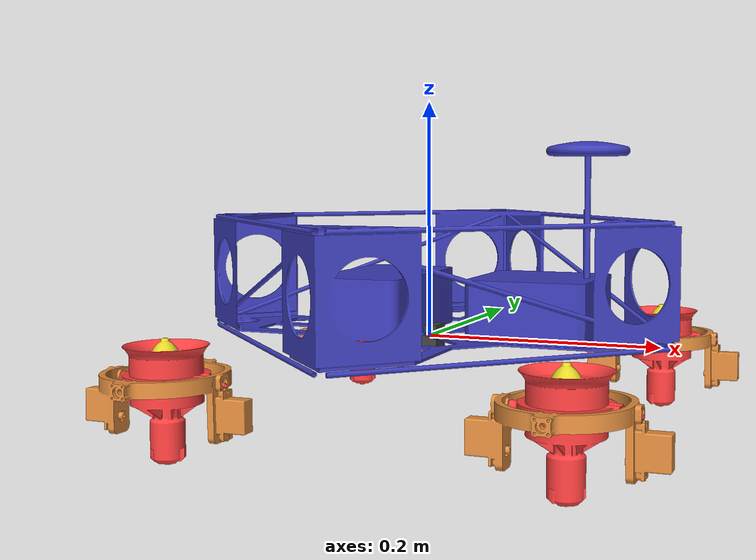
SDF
<sdf version='1.10'>
  <model name='tvmd'>
    <link name='base_link'>
      <inertial>
        <pose>0 0 0 0 0 0</pose>
        <mass>1.4</mass>
        <inertia>
          <ixx>0.02</ixx>
          <ixy>0.0002778506938765993</ixy>
          <ixz>-0.00050801012549722409</ixz>
          <iyy>0.02</iyy>
          <iyz>-0.0002130772702844956</iyz>
          <izz>0.02</izz>
        </inertia>
      </inertial>
      <collision name='base_link_collision'>
        <pose>0 0 0.050000000000000003 0 0 0.78539816339744839</pose>
        <geometry>
          <box>
            <size>0.29999999999999999 0.29999999999999999 0.10000000000000001</size>
          </box>
        </geometry>
        <surface>
          <contact>
            <ode/>
          </contact>
          <friction>
            <ode/>
          </friction>
        </surface>
      </collision>
      <collision name='base_link_fixed_joint_lump__imu_sensor_link_collision_1'>
        <pose>0 0 0 0 0 0</pose>
        <geometry>
          <box>
            <size>0.02 0.02 0.02</size>
          </box>
        </geometry>
        <surface>
          <contact>
            <ode/>
          </contact>
          <friction>
            <ode/>
          </friction>
        </surface>
      </collision>
      <visual name='base_link_visual'>
        <pose>0 0 0 0 0 0</pose>
        <geometry>
          <mesh>
            <scale>0.001 0.001 0.001</scale>
            <uri>model://tvmd/meshes/navigator/NavigatorModule-Sim.stl</uri>
          </mesh>
        </geometry>
        <material>
          <diffuse>0.25 0.25 0.75000006 1</diffuse>
          <ambient>0.25 0.25 0.75000006 1</ambient>
        </material>
      </visual>
      <visual name='base_link_fixed_joint_lump__imu_sensor_link_visual_1'>
        <pose>0 0 0 0 0 0</pose>
        <geometry>
          <box>
            <size>0.02 0.02 0.02</size>
          </box>
        </geometry>
        <material>
          <diffuse>0.25 0.25 0.25 1</diffuse>
          <ambient>0.25 0.25 0.25 1</ambient>
        </material>
      </visual>
      <sensor name='air_pressure_sensor' type='air_pressure'>
        <always_on>true</always_on>
        <update_rate>50</update_rate>
        <air_pressure>
          <pressure>
            <noise type='gaussian'>
              <mean>0</mean>
              <stddev>0.01</stddev>
            </noise>
          </pressure>
        </air_pressure>
      </sensor>
      <sensor name='imu_sensor' type='imu'>
        <always_on>true</always_on>
        <update_rate>250</update_rate>
        <visualize>true</visualize>
        <pose>0 0 0 0 0 0</pose>
      </sensor>
      <gravity>true</gravity>
      <gravity>true</gravity>
      <gravity>true</gravity>
      <self_collide>false</self_collide>
      <gravity>true</gravity>
    </link>
    <!-- Module 1 (Front-Left): Physics at (0.16, 0.175), Visual at (0.1675, 0.1825) -->
    <!-- Visual offset: (0.0075, 0.0075, 0) -->
    <joint name='module1_body_gimbal_joint' type='revolute'>
      <pose relative_to='base_link'>0.16 0.175 -0.02 0 0 0</pose>
      <parent>base_link</parent>
      <child>module1_gimbal_link</child>
      <axis>
        <xyz>0 1 0</xyz>
        <limit>
          <lower>-0.78539816339744828</lower>
          <upper>0.78539816339744828</upper>
          <effort>30000</effort>
          <velocity>10</velocity>
        </limit>
        <dynamics>
          <damping>0</damping>
          <friction>0</friction>
          <spring_reference>0</spring_reference>
          <spring_stiffness>0</spring_stiffness>
        </dynamics>
      </axis>
    </joint>
    <link name='module1_gimbal_link'>
      <pose relative_to='module1_body_gimbal_joint'>0 0 0 0 0 0</pose>
      <inertial>
        <pose>0 0 0 0 0 0</pose>
        <mass>0.033955279999999997</mass>
        <inertia>
          <ixx>0.00034947999999999999</ixx>
          <ixy>0</ixy>
          <ixz>0</ixz>
          <iyy>1.64e-06</iyy>
          <iyz>-2e-08</iyz>
          <izz>0.00034949999999999998</izz>
        </inertia>
      </inertial>
      <collision name='module1_gimbal_link_fixed_joint_lump__module1_actuator_collision_collision'>
        <pose>0.001 -0.018 0.065 0 0 0</pose>
        <geometry>
          <cylinder>
            <length>0.40000000000000002</length>
            <radius>0.01</radius>
          </cylinder>
        </geometry>
      </collision>
      <visual name='module1_gimbal_link_visual'>
        <pose>0.0065 -0.0125 0.065 0 0 0</pose>
        <geometry>
          <mesh>
            <scale>0.001 0.001 0.001</scale>
            <uri>model://tvmd/meshes/agent/Gimbal_Frame_1.stl</uri>
          </mesh>
        </geometry>
        <material>
          <script>
            <name>Gazebo/Gray</name>
            <uri>file://media/materials/scripts/gazebo.material</uri>
          </script>
          <diffuse>0.900000036 0.5625 0.25 1</diffuse>
          <ambient>0.900000036 0.5625 0.25 1</ambient>
        </material>
      </visual>
      <self_collide>false</self_collide>
      <gravity>true</gravity>
    </link>
    <joint name='module1_gimbal_actuator_joint' type='revolute'>
      <pose relative_to='module1_gimbal_link'>0 0 0 0 0 0</pose>
      <parent>module1_gimbal_link</parent>
      <child>module1_actuator_link</child>
      <axis>
        <xyz>1 0 0</xyz>
        <limit>
          <lower>-0.78539816339744828</lower>
          <upper>0.78539816339744828</upper>
          <effort>30000</effort>
          <velocity>10</velocity>
        </limit>
        <dynamics>
          <damping>0</damping>
          <friction>0</friction>
          <spring_reference>0</spring_reference>
          <spring_stiffness>0</spring_stiffness>
        </dynamics>
      </axis>
    </joint>
    <link name='module1_actuator_link'>
      <pose relative_to='module1_gimbal_actuator_joint'>0 0 0 0 0 0</pose>
      <inertial>
        <pose>0 0 0 0 0 0</pose>
        <mass>0.1254072</mass>
        <inertia>
          <ixx>0.00029933</ixx>
          <ixy>-1.1000000000000001e-07</ixy>
          <ixz>-4.7600000000000002e-06</ixz>
          <iyy>0.00030455</iyy>
          <iyz>1.8e-07</iyz>
          <izz>1.575e-05</izz>
        </inertia>
      </inertial>
      <visual name='module1_actuator_link_visual'>
        <pose>0.0075 0.1925 0 1.5708 0 0</pose>
        <geometry>
          <mesh>
            <scale>0.001 0.001 0.001</scale>
            <uri>model://tvmd/meshes/agent/Actuator_1.stl</uri>
          </mesh>
        </geometry>
        <material>
          <script>
            <name>Gazebo/Gray</name>
            <uri>file://media/materials/scripts/gazebo.material</uri>
          </script>
          <diffuse>1 0.25 0.25 1</diffuse>
          <ambient>1 0.25 0.25 1</ambient>
        </material>
      </visual>
      <self_collide>false</self_collide>
      <gravity>true</gravity>
    </link>
    <joint name='module1_actuator_prop1_joint' type='revolute'>
      <pose relative_to='module1_actuator_link'>0 0 0 0 0 0</pose>
      <parent>module1_actuator_link</parent>
      <child>module1_prop1_link</child>
      <axis>
        <xyz>0 0 1</xyz>
        <limit>
          <effort>30000</effort>
          <velocity>10000</velocity>
          <lower>-inf</lower>
          <upper>inf</upper>
        </limit>
        <dynamics>
          <spring_reference>0</spring_reference>
          <spring_stiffness>0</spring_stiffness>
        </dynamics>
      </axis>
    </joint>
    <link name='module1_prop1_link'>
      <pose relative_to='module1_actuator_prop1_joint'>0 0 0 0 0 0</pose>
      <inertial>
        <pose>0 0 0 0 0 0</pose>
        <mass>0.0025377799999999999</mass>
        <inertia>
          <ixx>7.0199999999999997e-06</ixx>
          <ixy>0</ixy>
          <ixz>0</ixz>
          <iyy>4.9999999999999998e-08</iyy>
          <iyz>-8.9999999999999999e-08</iyz>
          <izz>7.0500000000000003e-06</izz>
        </inertia>
      </inertial>
      <collision name='module1_prop1_link_fixed_joint_lump__module1_rotor_1_collision_collision'>
        <pose>0 0 0 0 0 0</pose>
        <geometry>
          <cylinder>
            <length>0.0050000000000000001</length>
            <radius>0.12</radius>
          </cylinder>
        </geometry>
      </collision>
      <visual name='module1_prop1_link_visual'>
        <pose>0.0075 0.0075 0.035 1.5708 0 0</pose>
        <geometry>
          <mesh>
            <scale>0.001 0.001 0.001</scale>
            <uri>model://tvmd/meshes/agent/Propeller_9047.stl</uri>
          </mesh>
        </geometry>
        <material>
          <script>
            <name>Gazebo/Yellow</name>
            <uri>file://media/materials/scripts/gazebo.material</uri>
          </script>
          <diffuse>1 0.850000024 0.262499988 1</diffuse>
          <ambient>1 0.850000024 0.262499988 1</ambient>
        </material>
      </visual>
      <self_collide>false</self_collide>
      <gravity>true</gravity>
    </link>
    <!-- Module 2 (Front-Right): Physics at (0.16, -0.175), Visual at (0.1675, -0.172) -->
    <!-- Visual offset: (0.0075, 0.003, 0) -->
    <joint name='module2_body_gimbal_joint' type='revolute'>
      <pose relative_to='base_link'>0.16 -0.175 -0.02 0 0 0</pose>
      <parent>base_link</parent>
      <child>module2_gimbal_link</child>
      <axis>
        <xyz>0 1 0</xyz>
        <limit>
          <lower>-0.78539816339744828</lower>
          <upper>0.78539816339744828</upper>
          <effort>30000</effort>
          <velocity>10</velocity>
        </limit>
        <dynamics>
          <damping>0</damping>
          <friction>0</friction>
          <spring_reference>0</spring_reference>
          <spring_stiffness>0</spring_stiffness>
        </dynamics>
      </axis>
    </joint>
    <link name='module2_gimbal_link'>
      <pose relative_to='module2_body_gimbal_joint'>0 0 0 0 0 0</pose>
      <inertial>
        <pose>0 0 0 0 0 0</pose>
        <mass>0.033955279999999997</mass>
        <inertia>
          <ixx>0.00034947999999999999</ixx>
          <ixy>0</ixy>
          <ixz>0</ixz>
          <iyy>1.64e-06</iyy>
          <iyz>-2e-08</iyz>
          <izz>0.00034949999999999998</izz>
        </inertia>
      </inertial>
      <collision name='module2_gimbal_link_fixed_joint_lump__module2_actuator_collision_collision'>
        <pose>0.001 -0.017999999999999999 0.065000000000000002 0 0 0</pose>
        <geometry>
          <cylinder>
            <length>0.40000000000000002</length>
            <radius>0.01</radius>
          </cylinder>
        </geometry>
      </collision>
      <visual name='module2_gimbal_link_visual'>
        <pose>0.0065 -0.017 0.065 0 0 0</pose>
        <geometry>
          <mesh>
            <scale>0.001 0.001 0.001</scale>
            <uri>model://tvmd/meshes/agent/Gimbal_Frame_1.stl</uri>
          </mesh>
        </geometry>
        <material>
          <script>
            <name>Gazebo/Gray</name>
            <uri>file://media/materials/scripts/gazebo.material</uri>
          </script>
          <diffuse>0.900000036 0.5625 0.25 1</diffuse>
          <ambient>0.900000036 0.5625 0.25 1</ambient>
        </material>
      </visual>
      <self_collide>false</self_collide>
      <gravity>true</gravity>
    </link>
    <joint name='module2_gimbal_actuator_joint' type='revolute'>
      <pose relative_to='module2_gimbal_link'>0 0 0 0 0 0</pose>
      <parent>module2_gimbal_link</parent>
      <child>module2_actuator_link</child>
      <axis>
        <xyz>1 0 0</xyz>
        <limit>
          <lower>-0.78539816339744828</lower>
          <upper>0.78539816339744828</upper>
          <effort>30000</effort>
          <velocity>10</velocity>
        </limit>
        <dynamics>
          <damping>0</damping>
          <friction>0</friction>
          <spring_reference>0</spring_reference>
          <spring_stiffness>0</spring_stiffness>
        </dynamics>
      </axis>
    </joint>
    <link name='module2_actuator_link'>
      <pose relative_to='module2_gimbal_actuator_joint'>0 0 0 0 0 0</pose>
      <inertial>
        <pose>0 0 0 0 0 0</pose>
        <mass>0.1254072</mass>
        <inertia>
          <ixx>0.00029933</ixx>
          <ixy>-1.1000000000000001e-07</ixy>
          <ixz>-4.7600000000000002e-06</ixz>
          <iyy>0.00030455</iyy>
          <iyz>1.8e-07</iyz>
          <izz>1.575e-05</izz>
        </inertia>
      </inertial>
      <visual name='module2_actuator_link_visual'>
        <pose>0.0075 0.188 0 1.5708 0 0</pose>
        <geometry>
          <mesh>
            <scale>0.001 0.001 0.001</scale>
            <uri>model://tvmd/meshes/agent/Actuator_1.stl</uri>
          </mesh>
        </geometry>
        <material>
          <script>
            <name>Gazebo/Gray</name>
            <uri>file://media/materials/scripts/gazebo.material</uri>
          </script>
          <diffuse>1 0.25 0.25 1</diffuse>
          <ambient>1 0.25 0.25 1</ambient>
        </material>
      </visual>
      <self_collide>false</self_collide>
      <gravity>true</gravity>
    </link>
    <joint name='module2_actuator_prop1_joint' type='revolute'>
      <pose relative_to='module2_actuator_link'>0 0 0 0 0 0</pose>
      <parent>module2_actuator_link</parent>
      <child>module2_prop1_link</child>
      <axis>
        <xyz>0 0 1</xyz>
        <limit>
          <effort>30000</effort>
          <velocity>10000</velocity>
          <lower>-inf</lower>
          <upper>inf</upper>
        </limit>
        <dynamics>
          <spring_reference>0</spring_reference>
          <spring_stiffness>0</spring_stiffness>
        </dynamics>
      </axis>
    </joint>
    <link name='module2_prop1_link'>
      <pose relative_to='module2_actuator_prop1_joint'>0 0 0 0 0 0</pose>
      <inertial>
        <pose>0 0 0 0 0 0</pose>
        <mass>0.0025377799999999999</mass>
        <inertia>
          <ixx>7.0199999999999997e-06</ixx>
          <ixy>0</ixy>
          <ixz>0</ixz>
          <iyy>4.9999999999999998e-08</iyy>
          <iyz>-8.9999999999999999e-08</iyz>
          <izz>7.0500000000000003e-06</izz>
        </inertia>
      </inertial>
      <collision name='module2_prop1_link_fixed_joint_lump__module2_rotor_1_collision_collision'>
        <pose>0 0 0 0 0 0</pose>
        <geometry>
          <cylinder>
            <length>0.0050000000000000001</length>
            <radius>0.12</radius>
          </cylinder>
        </geometry>
      </collision>
      <visual name='module2_prop1_link_visual'>
        <pose>0.0075 0.003 0.035 1.5708 0 0</pose>
        <geometry>
          <mesh>
            <scale>0.001 0.001 0.001</scale>
            <uri>model://tvmd/meshes/agent/Propeller_9047.stl</uri>
          </mesh>
        </geometry>
        <material>
          <script>
            <name>Gazebo/Yellow</name>
            <uri>file://media/materials/scripts/gazebo.material</uri>
          </script>
          <diffuse>1 0.850000024 0.262499988 1</diffuse>
          <ambient>1 0.850000024 0.262499988 1</ambient>
        </material>
      </visual>
      <self_collide>false</self_collide>
      <gravity>true</gravity>
    </link>
    <!-- Module 3 (Rear-Left): Physics at (-0.16, 0.175), Visual at (-0.15, 0.1825) -->
    <!-- Visual offset: (0.01, 0.0075, 0) -->
    <joint name='module3_body_gimbal_joint' type='revolute'>
      <pose relative_to='base_link'>-0.16 0.175 -0.02 0 0 0</pose>
      <parent>base_link</parent>
      <child>module3_gimbal_link</child>
      <axis>
        <xyz>0 1 0</xyz>
        <limit>
          <lower>-0.78539816339744828</lower>
          <upper>0.78539816339744828</upper>
          <effort>30000</effort>
          <velocity>10</velocity>
        </limit>
        <dynamics>
          <damping>0</damping>
          <friction>0</friction>
          <spring_reference>0</spring_reference>
          <spring_stiffness>0</spring_stiffness>
        </dynamics>
      </axis>
    </joint>
    <link name='module3_gimbal_link'>
      <pose relative_to='module3_body_gimbal_joint'>0 0 0 0 0 0</pose>
      <inertial>
        <pose>0 0 0 0 0 0</pose>
        <mass>0.033955279999999997</mass>
        <inertia>
          <ixx>0.00034947999999999999</ixx>
          <ixy>0</ixy>
          <ixz>0</ixz>
          <iyy>1.64e-06</iyy>
          <iyz>-2e-08</iyz>
          <izz>0.00034949999999999998</izz>
        </inertia>
      </inertial>
      <collision name='module3_gimbal_link_fixed_joint_lump__module3_actuator_collision_collision'>
        <pose>0.001 -0.017999999999999999 0.065000000000000002 0 0 0</pose>
        <geometry>
          <cylinder>
            <length>0.40000000000000002</length>
            <radius>0.01</radius>
          </cylinder>
        </geometry>
      </collision>
      <visual name='module3_gimbal_link_visual'>
        <pose>0.009 -0.0125 0.065 0 0 0</pose>
        <geometry>
          <mesh>
            <scale>0.001 0.001 0.001</scale>
            <uri>model://tvmd/meshes/agent/Gimbal_Frame_1.stl</uri>
          </mesh>
        </geometry>
        <material>
          <script>
            <name>Gazebo/Gray</name>
            <uri>file://media/materials/scripts/gazebo.material</uri>
          </script>
          <diffuse>0.900000036 0.5625 0.25 1</diffuse>
          <ambient>0.900000036 0.5625 0.25 1</ambient>
        </material>
      </visual>
      <self_collide>false</self_collide>
      <gravity>true</gravity>
    </link>
    <joint name='module3_gimbal_actuator_joint' type='revolute'>
      <pose relative_to='module3_gimbal_link'>0 0 0 0 0 0</pose>
      <parent>module3_gimbal_link</parent>
      <child>module3_actuator_link</child>
      <axis>
        <xyz>1 0 0</xyz>
        <limit>
          <lower>-0.78539816339744828</lower>
          <upper>0.78539816339744828</upper>
          <effort>30000</effort>
          <velocity>10</velocity>
        </limit>
        <dynamics>
          <damping>0</damping>
          <friction>0</friction>
          <spring_reference>0</spring_reference>
          <spring_stiffness>0</spring_stiffness>
        </dynamics>
      </axis>
    </joint>
    <link name='module3_actuator_link'>
      <pose relative_to='module3_gimbal_actuator_joint'>0 0 0 0 0 0</pose>
      <inertial>
        <pose>0 0 0 0 0 0</pose>
        <mass>0.1254072</mass>
        <inertia>
          <ixx>0.00029933</ixx>
          <ixy>-1.1000000000000001e-07</ixy>
          <ixz>-4.7600000000000002e-06</ixz>
          <iyy>0.00030455</iyy>
          <iyz>1.8e-07</iyz>
          <izz>1.575e-05</izz>
        </inertia>
      </inertial>
      <visual name='module3_actuator_link_visual'>
        <pose>0.01 0.1925 0 1.5708 0 0</pose>
        <geometry>
          <mesh>
            <scale>0.001 0.001 0.001</scale>
            <uri>model://tvmd/meshes/agent/Actuator_1.stl</uri>
          </mesh>
        </geometry>
        <material>
          <script>
            <name>Gazebo/Gray</name>
            <uri>file://media/materials/scripts/gazebo.material</uri>
          </script>
          <diffuse>1 0.25 0.25 1</diffuse>
          <ambient>1 0.25 0.25 1</ambient>
        </material>
      </visual>
      <self_collide>false</self_collide>
      <gravity>true</gravity>
    </link>
    <joint name='module3_actuator_prop1_joint' type='revolute'>
      <pose relative_to='module3_actuator_link'>0 0 0 0 0 0</pose>
      <parent>module3_actuator_link</parent>
      <child>module3_prop1_link</child>
      <axis>
        <xyz>0 0 1</xyz>
        <limit>
          <effort>30000</effort>
          <velocity>10000</velocity>
          <lower>-inf</lower>
          <upper>inf</upper>
        </limit>
        <dynamics>
          <spring_reference>0</spring_reference>
          <spring_stiffness>0</spring_stiffness>
        </dynamics>
      </axis>
    </joint>
    <link name='module3_prop1_link'>
      <pose relative_to='module3_actuator_prop1_joint'>0 0 0 0 0 0</pose>
      <inertial>
        <pose>0 0 0 0 0 0</pose>
        <mass>0.0025377799999999999</mass>
        <inertia>
          <ixx>7.0199999999999997e-06</ixx>
          <ixy>0</ixy>
          <ixz>0</ixz>
          <iyy>4.9999999999999998e-08</iyy>
          <iyz>-8.9999999999999999e-08</iyz>
          <izz>7.0500000000000003e-06</izz>
        </inertia>
      </inertial>
      <collision name='module3_prop1_link_fixed_joint_lump__module3_rotor_1_collision_collision'>
        <pose>0 0 0 0 0 0</pose>
        <geometry>
          <cylinder>
            <length>0.0050000000000000001</length>
            <radius>0.12</radius>
          </cylinder>
        </geometry>
      </collision>
      <visual name='module3_prop1_link_visual'>
        <pose>0.01 0.0075 0.035 1.5708 0 0</pose>
        <geometry>
          <mesh>
            <scale>0.001 0.001 0.001</scale>
            <uri>model://tvmd/meshes/agent/Propeller_9047.stl</uri>
          </mesh>
        </geometry>
        <material>
          <script>
            <name>Gazebo/Yellow</name>
            <uri>file://media/materials/scripts/gazebo.material</uri>
          </script>
          <diffuse>1 0.850000024 0.262499988 1</diffuse>
          <ambient>1 0.850000024 0.262499988 1</ambient>
        </material>
      </visual>
      <self_collide>false</self_collide>
      <gravity>true</gravity>
    </link>
    <!-- Module 4 (Rear-Right): Physics at (-0.16, -0.175), Visual at (-0.15, -0.175) -->
    <!-- Visual offset: (0.01, 0, 0) -->
    <joint name='module4_body_gimbal_joint' type='revolute'>
      <pose relative_to='base_link'>-0.16 -0.175 -0.02 0 0 0</pose>
      <parent>base_link</parent>
      <child>module4_gimbal_link</child>
      <axis>
        <xyz>0 1 0</xyz>
        <limit>
          <lower>-0.78539816339744828</lower>
          <upper>0.78539816339744828</upper>
          <effort>30000</effort>
          <velocity>10</velocity>
        </limit>
        <dynamics>
          <damping>0</damping>
          <friction>0</friction>
          <spring_reference>0</spring_reference>
          <spring_stiffness>0</spring_stiffness>
        </dynamics>
      </axis>
    </joint>
    <link name='module4_gimbal_link'>
      <pose relative_to='module4_body_gimbal_joint'>0 0 0 0 0 0</pose>
      <inertial>
        <pose>0 0 0 0 0 0</pose>
        <mass>0.033955279999999997</mass>
        <inertia>
          <ixx>0.00034947999999999999</ixx>
          <ixy>0</ixy>
          <ixz>0</ixz>
          <iyy>1.64e-06</iyy>
          <iyz>-2e-08</iyz>
          <izz>0.00034949999999999998</izz>
        </inertia>
      </inertial>
      <collision name='module4_gimbal_link_fixed_joint_lump__module4_actuator_collision_collision'>
        <pose>0.001 -0.017999999999999999 0.065000000000000002 0 0 0</pose>
        <geometry>
          <cylinder>
            <length>0.40000000000000002</length>
            <radius>0.01</radius>
          </cylinder>
        </geometry>
      </collision>
      <visual name='module4_gimbal_link_visual'>
        <pose>0.009 -0.02 0.065 0 0 0</pose>
        <geometry>
          <mesh>
            <scale>0.001 0.001 0.001</scale>
            <uri>model://tvmd/meshes/agent/Gimbal_Frame_1.stl</uri>
          </mesh>
        </geometry>
        <material>
          <script>
            <name>Gazebo/Gray</name>
            <uri>file://media/materials/scripts/gazebo.material</uri>
          </script>
          <diffuse>0.900000036 0.5625 0.25 1</diffuse>
          <ambient>0.900000036 0.5625 0.25 1</ambient>
        </material>
      </visual>
      <self_collide>false</self_collide>
      <gravity>true</gravity>
    </link>
    <joint name='module4_gimbal_actuator_joint' type='revolute'>
      <pose relative_to='module4_gimbal_link'>0 0 0 0 0 0</pose>
      <parent>module4_gimbal_link</parent>
      <child>module4_actuator_link</child>
      <axis>
        <xyz>1 0 0</xyz>
        <limit>
          <lower>-0.78539816339744828</lower>
          <upper>0.78539816339744828</upper>
          <effort>30000</effort>
          <velocity>10</velocity>
        </limit>
        <dynamics>
          <damping>0</damping>
          <friction>0</friction>
          <spring_reference>0</spring_reference>
          <spring_stiffness>0</spring_stiffness>
        </dynamics>
      </axis>
    </joint>
    <link name='module4_actuator_link'>
      <pose relative_to='module4_gimbal_actuator_joint'>0 0 0 0 0 0</pose>
      <inertial>
        <pose>0 0 0 0 0 0</pose>
        <mass>0.1254072</mass>
        <inertia>
          <ixx>0.00029933</ixx>
          <ixy>-1.1000000000000001e-07</ixy>
          <ixz>-4.7600000000000002e-06</ixz>
          <iyy>0.00030455</iyy>
          <iyz>1.8e-07</iyz>
          <izz>1.575e-05</izz>
        </inertia>
      </inertial>
      <visual name='module4_actuator_link_visual'>
        <pose>0.01 0.185 0 1.5708 0 0</pose>
        <geometry>
          <mesh>
            <scale>0.001 0.001 0.001</scale>
            <uri>model://tvmd/meshes/agent/Actuator_1.stl</uri>
          </mesh>
        </geometry>
        <material>
          <script>
            <name>Gazebo/Gray</name>
            <uri>file://media/materials/scripts/gazebo.material</uri>
          </script>
          <diffuse>1 0.25 0.25 1</diffuse>
          <ambient>1 0.25 0.25 1</ambient>
        </material>
      </visual>
      <self_collide>false</self_collide>
      <gravity>true</gravity>
    </link>
    <joint name='module4_actuator_prop1_joint' type='revolute'>
      <pose relative_to='module4_actuator_link'>0 0 0 0 0 0</pose>
      <parent>module4_actuator_link</parent>
      <child>module4_prop1_link</child>
      <axis>
        <xyz>0 0 1</xyz>
        <limit>
          <effort>30000</effort>
          <velocity>10000</velocity>
          <lower>-inf</lower>
          <upper>inf</upper>
        </limit>
        <dynamics>
          <spring_reference>0</spring_reference>
          <spring_stiffness>0</spring_stiffness>
        </dynamics>
      </axis>
    </joint>
    <link name='module4_prop1_link'>
      <pose relative_to='module4_actuator_prop1_joint'>0 0 0 0 0 0</pose>
      <inertial>
        <pose>0 0 0 0 0 0</pose>
        <mass>0.0025377799999999999</mass>
        <inertia>
          <ixx>7.0199999999999997e-06</ixx>
          <ixy>0</ixy>
          <ixz>0</ixz>
          <iyy>4.9999999999999998e-08</iyy>
          <iyz>-8.9999999999999999e-08</iyz>
          <izz>7.0500000000000003e-06</izz>
        </inertia>
      </inertial>
      <collision name='module4_prop1_link_fixed_joint_lump__module4_rotor_1_collision_collision'>
        <pose>0 0 0 0 0 0</pose>
        <geometry>
          <cylinder>
            <length>0.0050000000000000001</length>
            <radius>0.12</radius>
          </cylinder>
        </geometry>
      </collision>
      <visual name='module4_prop1_link_visual'>
        <pose>0.01 0 0.035 1.5708 0 0</pose>
        <geometry>
          <mesh>
            <scale>0.001 0.001 0.001</scale>
            <uri>model://tvmd/meshes/agent/Propeller_9047.stl</uri>
          </mesh>
        </geometry>
        <material>
          <script>
            <name>Gazebo/Yellow</name>
            <uri>file://media/materials/scripts/gazebo.material</uri>
          </script>
          <diffuse>1 0.850000024 0.262499988 1</diffuse>
          <ambient>1 0.850000024 0.262499988 1</ambient>
        </material>
      </visual>
      <self_collide>false</self_collide>
      <gravity>true</gravity>
    </link>
    <plugin name='gz::sim::systems::JointPositionController' filename='gz-sim-joint-position-controller-system'>
      <joint_name>module1_body_gimbal_joint</joint_name>
      <sub_topic>servo_1</sub_topic>
    </plugin>
    <plugin name='gz::sim::systems::JointPositionController' filename='gz-sim-joint-position-controller-system'>
      <joint_name>module1_gimbal_actuator_joint</joint_name>
      <sub_topic>servo_0</sub_topic>
    </plugin>
    <plugin name='gz::sim::systems::MulticopterMotorModel' filename='gz-sim-multicopter-motor-model-system'>
      <jointName>module1_actuator_prop1_joint</jointName>
      <linkName>module1_prop1_link</linkName>
      <turningDirection>cw</turningDirection>
      <timeConstantUp>0.0125</timeConstantUp>
      <timeConstantDown>0.025</timeConstantDown>
      <maxRotVelocity>1500</maxRotVelocity>
      <motorConstant>2e-05</motorConstant>
      <momentConstant>0.06</momentConstant>
      <commandSubTopic>command/motor_speed</commandSubTopic>
      <motorNumber>0</motorNumber>
      <rotorDragCoefficient>0.000106428</rotorDragCoefficient>
      <rollingMomentCoefficient>1e-06</rollingMomentCoefficient>
      <rotorVelocitySlowdownSim>20</rotorVelocitySlowdownSim>
      <motorType>velocity</motorType>
    </plugin>
    <plugin name='gz::sim::systems::JointPositionController' filename='gz-sim-joint-position-controller-system'>
      <joint_name>module2_body_gimbal_joint</joint_name>
      <sub_topic>servo_3</sub_topic>
    </plugin>
    <plugin name='gz::sim::systems::JointPositionController' filename='gz-sim-joint-position-controller-system'>
      <joint_name>module2_gimbal_actuator_joint</joint_name>
      <sub_topic>servo_2</sub_topic>
    </plugin>
    <plugin name='gz::sim::systems::MulticopterMotorModel' filename='gz-sim-multicopter-motor-model-system'>
      <jointName>module2_actuator_prop1_joint</jointName>
      <linkName>module2_prop1_link</linkName>
      <turningDirection>ccw</turningDirection>
      <timeConstantUp>0.0125</timeConstantUp>
      <timeConstantDown>0.025</timeConstantDown>
      <maxRotVelocity>1500</maxRotVelocity>
      <motorConstant>2e-05</motorConstant>
      <momentConstant>0.06</momentConstant>
      <commandSubTopic>command/motor_speed</commandSubTopic>
      <motorNumber>1</motorNumber>
      <rotorDragCoefficient>0.000106428</rotorDragCoefficient>
      <rollingMomentCoefficient>1e-06</rollingMomentCoefficient>
      <rotorVelocitySlowdownSim>20</rotorVelocitySlowdownSim>
      <motorType>velocity</motorType>
    </plugin>
    <plugin name='gz::sim::systems::JointPositionController' filename='gz-sim-joint-position-controller-system'>
      <joint_name>module3_body_gimbal_joint</joint_name>
      <sub_topic>servo_5</sub_topic>
    </plugin>
    <plugin name='gz::sim::systems::JointPositionController' filename='gz-sim-joint-position-controller-system'>
      <joint_name>module3_gimbal_actuator_joint</joint_name>
      <sub_topic>servo_4</sub_topic>
    </plugin>
    <plugin name='gz::sim::systems::MulticopterMotorModel' filename='gz-sim-multicopter-motor-model-system'>
      <jointName>module3_actuator_prop1_joint</jointName>
      <linkName>module3_prop1_link</linkName>
      <turningDirection>ccw</turningDirection>
      <timeConstantUp>0.0125</timeConstantUp>
      <timeConstantDown>0.025</timeConstantDown>
      <maxRotVelocity>1500</maxRotVelocity>
      <motorConstant>2e-05</motorConstant>
      <momentConstant>0.06</momentConstant>
      <commandSubTopic>command/motor_speed</commandSubTopic>
      <motorNumber>2</motorNumber>
      <rotorDragCoefficient>0.000106428</rotorDragCoefficient>
      <rollingMomentCoefficient>1e-06</rollingMomentCoefficient>
      <rotorVelocitySlowdownSim>20</rotorVelocitySlowdownSim>
      <motorType>velocity</motorType>
    </plugin>
    <plugin name='gz::sim::systems::JointPositionController' filename='gz-sim-joint-position-controller-system'>
      <joint_name>module4_body_gimbal_joint</joint_name>
      <sub_topic>servo_7</sub_topic>
    </plugin>
    <plugin name='gz::sim::systems::JointPositionController' filename='gz-sim-joint-position-controller-system'>
      <joint_name>module4_gimbal_actuator_joint</joint_name>
      <sub_topic>servo_6</sub_topic>
    </plugin>
    <plugin name='gz::sim::systems::MulticopterMotorModel' filename='gz-sim-multicopter-motor-model-system'>
      <jointName>module4_actuator_prop1_joint</jointName>
      <linkName>module4_prop1_link</linkName>
      <turningDirection>cw</turningDirection>
      <timeConstantUp>0.0125</timeConstantUp>
      <timeConstantDown>0.025</timeConstantDown>
      <maxRotVelocity>1500</maxRotVelocity>
      <motorConstant>2e-05</motorConstant>
      <momentConstant>0.06</momentConstant>
      <commandSubTopic>command/motor_speed</commandSubTopic>
      <motorNumber>3</motorNumber>
      <rotorDragCoefficient>0.000106428</rotorDragCoefficient>
      <rollingMomentCoefficient>1e-06</rollingMomentCoefficient>
      <rotorVelocitySlowdownSim>20</rotorVelocitySlowdownSim>
      <motorType>velocity</motorType>
    </plugin>
    <frame name='imu_sensor_joint' attached_to='base_link'>
      <pose>0 0 0 0 0 0</pose>
    </frame>
    <frame name='imu_sensor_link' attached_to='imu_sensor_joint'>
      <pose>0 0 0 0 0 0</pose>
    </frame>
    <frame name='rigid_base_link_module1_body_link' attached_to='base_link'>
      <pose>0.16750000000000001 0.1825 -0.02 0 0 0</pose>
    </frame>
    <frame name='module1_body_link' attached_to='rigid_base_link_module1_body_link'>
      <pose>0 0 0 0 0 0</pose>
    </frame>
    <frame name='rigid_base_link_module2_body_link' attached_to='base_link'>
      <pose>0.16750000000000001 -0.17199999999999999 -0.02 0 0 0</pose>
    </frame>
    <frame name='module2_body_link' attached_to='rigid_base_link_module2_body_link'>
      <pose>0 0 0 0 0 0</pose>
    </frame>
    <frame name='rigid_base_link_module3_body_link' attached_to='base_link'>
      <pose>-0.14999999999999999 0.1825 -0.02 0 0 0</pose>
    </frame>
    <frame name='module3_body_link' attached_to='rigid_base_link_module3_body_link'>
      <pose>0 0 0 0 0 0</pose>
    </frame>
    <frame name='rigid_base_link_module4_body_link' attached_to='base_link'>
      <pose>-0.14999999999999999 -0.17499999999999999 -0.02 0 0 0</pose>
    </frame>
    <frame name='module4_body_link' attached_to='rigid_base_link_module4_body_link'>
      <pose>0 0 0 0 0 0</pose>
    </frame>
  </model>
</sdf>
